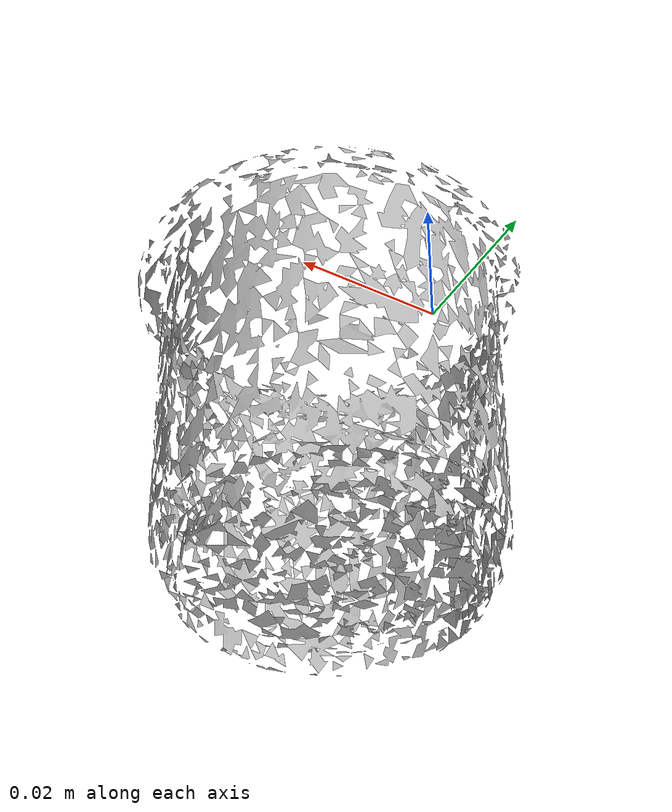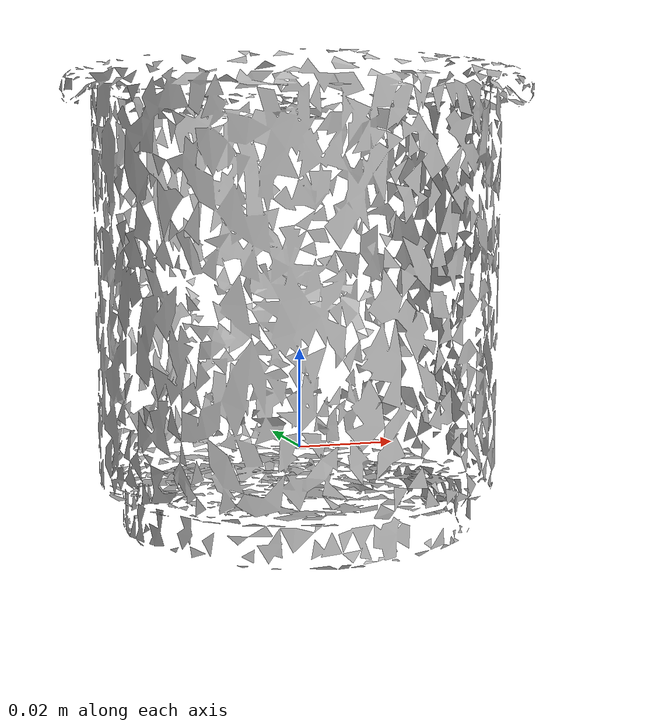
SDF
<?xml version='1.0'?>
<sdf version="1.4">
  <model name="d_cups">
    <static>false</static>
    <link name="link">
      <inertial>
        <pose>-0.018377150074668475 -0.059786665220060674 0.03158304348204601 2.721514571228307 0.41574473256351324 -2.7606922438463575</pose>
        <mass>3.514875616910449e-05</mass>
        <inertia>
          <ixx>2.9013789460339997e-08</ixx>
          <ixy>3.3481393284926994e-24</ixy>
          <ixz>-2.1951196370184575e-24</ixz>
          <iyy>2.871027632126721e-08</iyy>
          <iyz>6.1048447726017975e-24</iyz>
          <izz>2.658488549776032e-08</izz>
        </inertia>
      </inertial>
      <collision name="collision">
        <geometry>
          <mesh>
            <!-- Use a downsampled mesh for collisions -->
            <uri>model://065-d_cups/downsampled.obj</uri>
	        </mesh>
        </geometry>
        <surface>
      </surface>
      </collision>
      <visual name="visual">
        <geometry>
          <mesh>
            <uri>model://065-d_cups/google_16k/textured.obj</uri>
	        </mesh>
        </geometry>
        <material>
          <script>
            <uri>model://065-d_cups/d_cups.material</uri>
            <name>d_cups</name>
          </script>
        </material>
      </visual>
    </link>
  </model>
</sdf>
